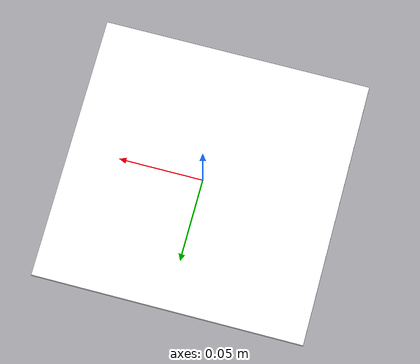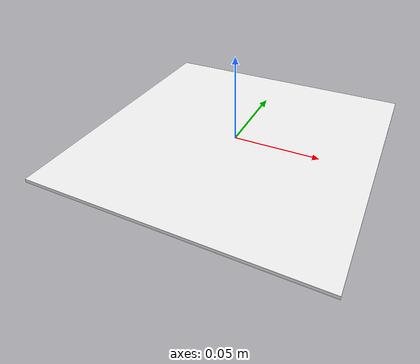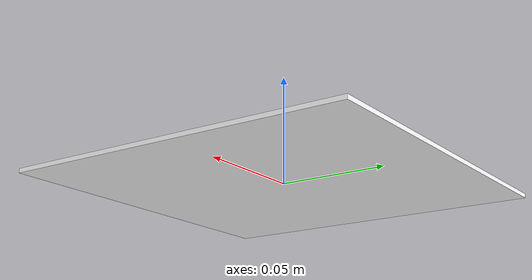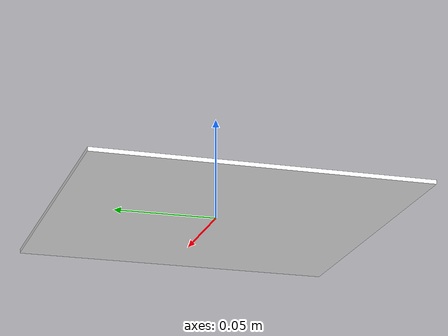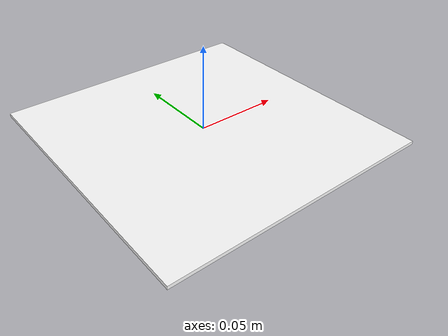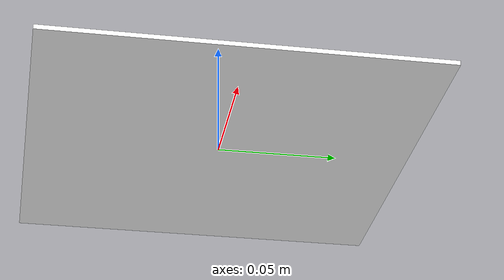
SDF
<?xml version="1.0" ?>
<sdf version="1.9">
  <model name="apriltag_36h11_00000">
    <static>true</static>
    <link name="tag_link">
      <pose>0 0 0 0 0 0</pose>
      <collision name="collision">
        <geometry>
          <box>
            <size>0.16 0.16 0.002</size>
          </box>
        </geometry>
      </collision>
      <visual name="visual">
        <geometry>
          <box>
            <size>0.16 0.16 0.002</size>
          </box>
        </geometry>
        <material>
          <ambient>1 1 1 1</ambient>
          <diffuse>1 1 1 1</diffuse>
          <specular>0 0 0 1</specular>
          <pbr>
            <metal>
              <albedo_map>materials/textures/tag36_11_00000.png</albedo_map>
              <roughness>1.0</roughness>
            </metal>
          </pbr>
        </material>
      </visual>
    </link>
  </model>
</sdf>
